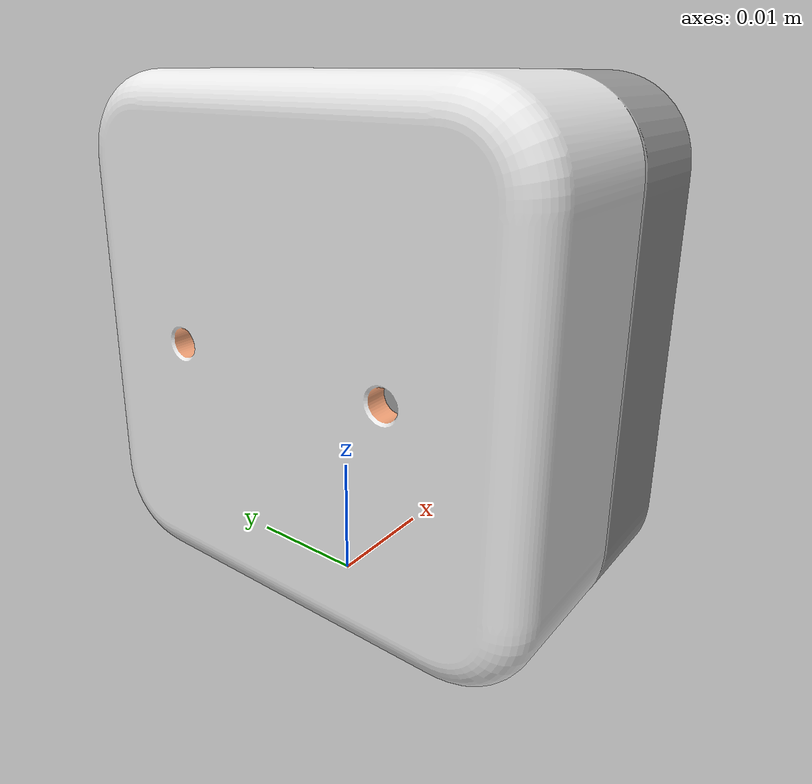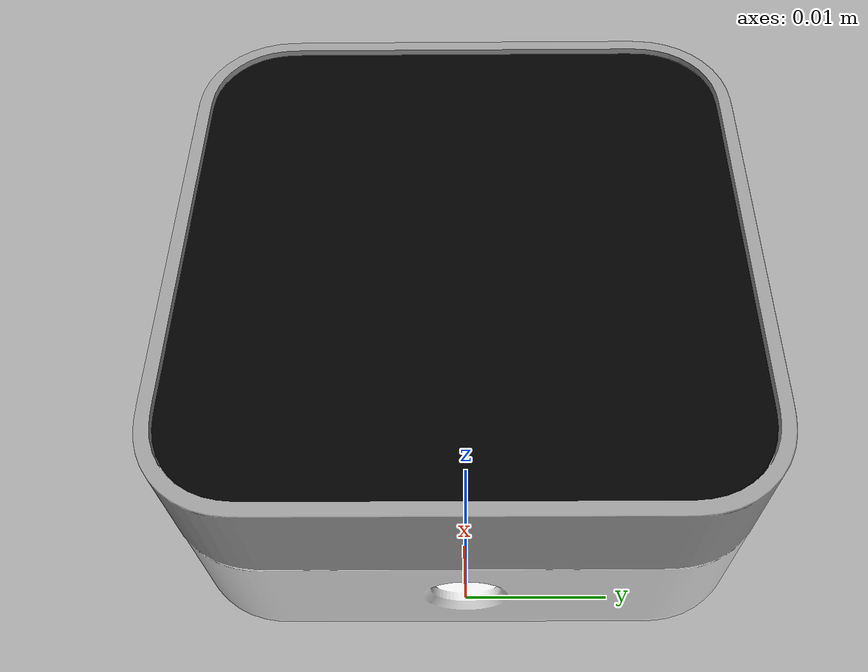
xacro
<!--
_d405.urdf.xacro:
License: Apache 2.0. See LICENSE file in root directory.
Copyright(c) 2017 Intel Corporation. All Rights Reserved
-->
<?xml version="1.0"?>
<robot name="realsense2_camera" xmlns:xacro="http://ros.org/wiki/xacro">
  <xacro:arg name="use_nominal_extrinsics" default="false"/>
  <xacro:arg name="use_mesh" default="true" />
  <xacro:include filename="$(find realsense2_description)/urdf/_d405.urdf.xacro" />

  <link name="base_link" />
  <xacro:sensor_d405 parent="base_link" use_nominal_extrinsics="$(arg use_nominal_extrinsics)" use_mesh="$(arg use_mesh)">
    <origin xyz="0 0 0" rpy="0 0 0"/>
  </xacro:sensor_d405>
</robot>

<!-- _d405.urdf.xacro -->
<robot name="sensor_d405" xmlns:xacro="http://ros.org/wiki/xacro">
  <!-- Includes -->
  <xacro:include filename="$(find realsense2_description)/urdf/_materials.urdf.xacro" />

  <xacro:macro name="sensor_d405" params="parent *origin name:=camera use_nominal_extrinsics:=false use_mesh:=true">
    <xacro:property name="M_PI" value="3.1415926535897931" />

    <!-- The following values are approximate, and the camera node
     publishing TF values with actual calibrated camera extrinsic values -->
    <xacro:property name="d405_cam_depth_to_infra1_offset" value="0.0"/>
    <xacro:property name="d405_cam_depth_to_infra2_offset" value="-0.018"/>
    <xacro:property name="d405_cam_depth_to_color_offset" value="0.0"/>

    <!-- The following values model the aluminum peripherial case for the
  	d405 camera, with the camera joint represented by the actual
  	peripherial camera tripod mount -->
    <xacro:property name="d405_cam_width" value="0.042"/>
    <xacro:property name="d405_cam_height" value="0.042"/>
    <xacro:property name="d405_cam_depth" value="0.023"/>
    <xacro:property name="d405_cam_mount_from_center_offset" value="0.01465"/>
    <!-- glass cover is 0.1 mm inwards from front aluminium plate -->
    <xacro:property name="d405_glass_to_front" value="0.1e-3"/>
    <!-- see datasheet Revision 007, Fig. 4-4 page 65 -->
    <xacro:property name="d405_zero_depth_to_glass" value="3.7e-3"/>
    <!-- convenience precomputation to avoid clutter-->
    <xacro:property name="d405_mesh_x_offset" value="${d405_cam_mount_from_center_offset-d405_glass_to_front-d405_zero_depth_to_glass}"/>

    <!-- The following offset is relative the the physical d405 camera peripherial
  	camera tripod mount -->
    <xacro:property name="d405_cam_depth_px" value="${d405_cam_mount_from_center_offset}"/>
    <xacro:property name="d405_cam_depth_py" value="0.009"/>
    <xacro:property name="d405_cam_depth_pz" value="${d405_cam_height/2}"/>

    <!-- camera body, with origin at bottom screw mount -->
    <joint name="${name}_joint" type="fixed">
      <xacro:insert_block name="origin" />
      <parent link="${parent}"/>
      <child link="${name}_bottom_screw_frame" />
    </joint>
    <link name="${name}_bottom_screw_frame"/>

    <joint name="${name}_link_joint" type="fixed">
      <origin xyz="${d405_mesh_x_offset} ${d405_cam_depth_py} ${d405_cam_depth_pz}" rpy="0 0 0"/>
      <parent link="${name}_bottom_screw_frame"/>
      <child link="${name}_link" />
    </joint>

    <link name="${name}_link">
      <visual>
        <xacro:if value="${use_mesh}">
          <!-- the mesh origin is at front plate in between the two infrared camera axes -->
          <origin xyz="${d405_zero_depth_to_glass + d405_glass_to_front} ${-d405_cam_depth_py} 0" rpy="0 0 ${M_PI/2}"/>
          <geometry>
            <mesh filename="package://realsense2_description/meshes/d405.dae" />
          </geometry>
        </xacro:if>
        <xacro:unless value="${use_mesh}">
          <origin xyz="0 ${-d405_cam_depth_py} 0" rpy="0 0 0"/>
          <geometry>
            <box size="${d405_cam_depth} ${d405_cam_width} ${d405_cam_height}"/>
          </geometry>
          <material name="aluminum"/>
        </xacro:unless>
      </visual>
      <collision>
        <origin xyz="0 ${-d405_cam_depth_py} 0" rpy="0 0 0"/>
        <geometry>
          <box size="${d405_cam_depth} ${d405_cam_width} ${d405_cam_height}"/>
        </geometry>
      </collision>
      <inertial>
        <!-- The following are not reliable values, and should not be used for modeling -->
        <mass value="0.072" />
        <origin xyz="0 0 0" />
        <inertia ixx="0.003881243" ixy="0.0" ixz="0.0" iyy="0.000498940" iyz="0.0" izz="0.003879257" />
      </inertial>
    </link>

    <!-- Use the nominal extrinsics between camera frames if the calibrated extrinsics aren't being published. e.g. running the device in simulation  -->
    <xacro:if value="${use_nominal_extrinsics}">
      <!-- camera depth joints and links -->
      <joint name="${name}_depth_joint" type="fixed">
        <origin xyz="0 0 0" rpy="0 0 0"/>
        <parent link="${name}_link"/>
        <child link="${name}_depth_frame" />
      </joint>
      <link name="${name}_depth_frame"/>

      <joint name="${name}_depth_optical_joint" type="fixed">
        <origin xyz="0 0 0" rpy="${-M_PI/2} 0 ${-M_PI/2}" />
        <parent link="${name}_depth_frame" />
        <child link="${name}_depth_optical_frame" />
      </joint>
      <link name="${name}_depth_optical_frame"/>

      <!-- camera left IR joints and links -->
      <joint name="${name}_infra1_joint" type="fixed">
        <origin xyz="0 ${d405_cam_depth_to_infra1_offset} 0" rpy="0 0 0" />
        <parent link="${name}_link" />
        <child link="${name}_infra1_frame" />
      </joint>
      <link name="${name}_infra1_frame"/>

      <joint name="${name}_infra1_optical_joint" type="fixed">
        <origin xyz="0 0 0" rpy="${-M_PI/2} 0 ${-M_PI/2}" />
        <parent link="${name}_infra1_frame" />
        <child link="${name}_infra1_optical_frame" />
      </joint>
      <link name="${name}_infra1_optical_frame"/>

      <!-- camera right IR joints and links -->
      <joint name="${name}_infra2_joint" type="fixed">
        <origin xyz="0 ${d405_cam_depth_to_infra2_offset} 0" rpy="0 0 0" />
        <parent link="${name}_link" />
        <child link="${name}_infra2_frame" />
      </joint>
      <link name="${name}_infra2_frame"/>

      <joint name="${name}_infra2_optical_joint" type="fixed">
        <origin xyz="0 0 0" rpy="${-M_PI/2} 0 ${-M_PI/2}" />
        <parent link="${name}_infra2_frame" />
        <child link="${name}_infra2_optical_frame" />
      </joint>
      <link name="${name}_infra2_optical_frame"/>

      <!-- camera color joints and links -->
      <joint name="${name}_color_joint" type="fixed">
        <origin xyz="0 ${d405_cam_depth_to_color_offset} 0" rpy="0 0 0" />
        <parent link="${name}_link" />
        <child link="${name}_color_frame" />
      </joint>
      <link name="${name}_color_frame"/>

      <joint name="${name}_color_optical_joint" type="fixed">
        <origin xyz="0 0 0" rpy="${-M_PI/2} 0 ${-M_PI/2}" />
        <parent link="${name}_color_frame" />
        <child link="${name}_color_optical_frame" />
      </joint>
      <link name="${name}_color_optical_frame"/>
    </xacro:if>

  </xacro:macro>
</robot>
